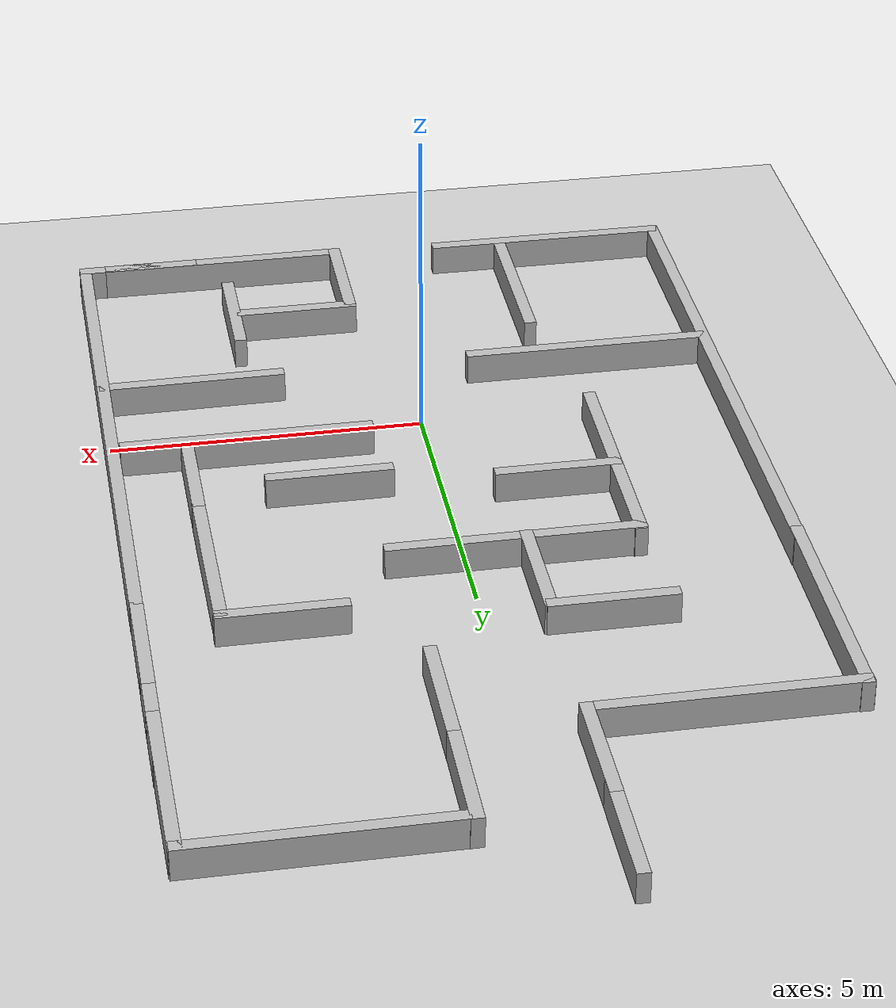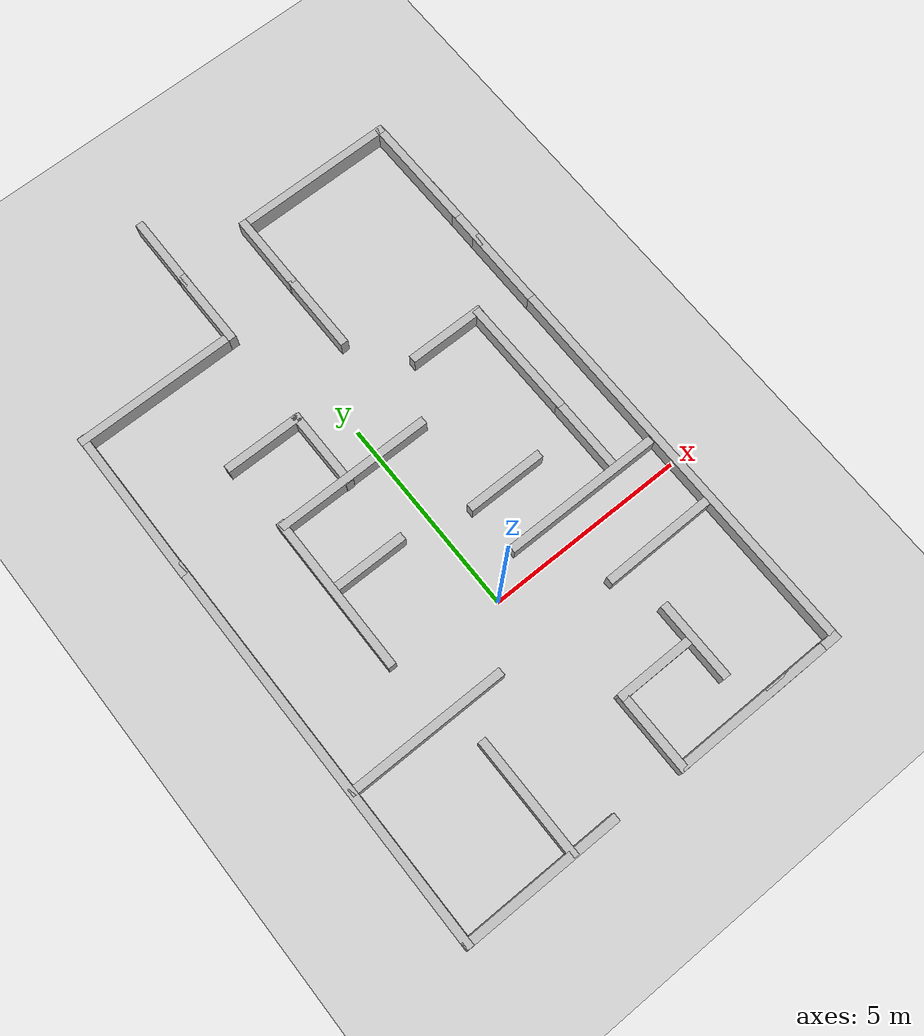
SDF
<sdf version="1.7">
 <world name="maze_world">
  <model name="ground_plane">
   <static>1</static>
   <link name="link">
    <collision name="collision">
     <geometry><plane><normal>0 0 1</normal><size>100 100</size></plane></geometry>
     <surface>
      <contact><collide_bitmask>65535</collide_bitmask></contact>
      <friction><ode><mu>100</mu><mu2>50</mu2></ode></friction>
     </surface>
    </collision>
    <visual name="visual">
     <cast_shadows>0</cast_shadows>
     <geometry><plane><normal>0 0 1</normal><size>100 100</size></plane></geometry>
     <material>
      <script><uri>file://media/materials/scripts/gazebo.material</uri><name>Gazebo/Grey</name></script>
     </material>
    </visual>
   </link>
  </model>
  <light name="sun" type="directional">
   <pose>0 0 10 0 -0 0</pose>
   <diffuse>0.8 0.8 0.8 1</diffuse>
   <specular>0.2 0.2 0.2 1</specular>
   <attenuation>
    <range>1000</range>
    <constant>0.9</constant>
    <linear>0.01</linear>
    <quadratic>0.001</quadratic>
   </attenuation>
   <direction>-0.5 0.1 -0.9</direction>
   <spot><inner_angle>0</inner_angle><outer_angle>0</outer_angle><falloff>0</falloff></spot>
  </light>
  <model name="south_wall_left">
   <pose>-0.005519 0 0 0 -0 0</pose>
   <static>1</static>
   <link name="link">
    <collision name="collision"><geometry><box><size>4 0.2 0.5</size></box></geometry></collision>
    <visual name="visual"><geometry><box><size>4 0.2 0.5</size></box></geometry></visual>
    <pose>-3 -5 0.25 0 -0 0</pose>
   </link>
  </model>
  <model name="south_wall_right">
   <pose>-0.33667 -0.08478 0 0 -0 0</pose>
   <static>1</static>
   <link name="link">
    <collision name="collision"><geometry><box><size>4 0.2 0.5</size></box></geometry></collision>
    <visual name="visual"><geometry><box><size>4 0.2 0.5</size></box></geometry></visual>
    <pose>3 -5 0.25 0 -0 0</pose>
   </link>
  </model>
  <model name="west_wall">
   <pose>0.07752 -0.091172 0 0 -0 0</pose>
   <static>1</static>
   <link name="link">
    <collision name="collision"><geometry><box><size>0.2 10 0.5</size></box></geometry></collision>
    <visual name="visual"><geometry><box><size>0.2 10 0.5</size></box></geometry></visual>
    <pose>-5 0 0.25 0 -0 0</pose>
   </link>
  </model>
  <model name="east_wall">
   <pose>0.00631 0.003506 0 0 -0 0</pose>
   <static>1</static>
   <link name="link">
    <collision name="collision"><geometry><box><size>0.2 10 0.5</size></box></geometry></collision>
    <visual name="visual"><geometry><box><size>0.2 10 0.5</size></box></geometry></visual>
    <pose>5 0 0.25 0 -0 0</pose>
   </link>
  </model>
  <model name="wall_1">
   <pose>-0.139468 0.47838 0 0 0 -1.56432</pose>
   <static>1</static>
   <link name="link">
    <collision name="collision"><geometry><box><size>3 0.2 0.5</size></box></geometry></collision>
    <visual name="visual"><geometry><box><size>3 0.2 0.5</size></box></geometry></visual>
    <pose>-3.5 4 0.25 0 -0 0</pose>
   </link>
  </model>
  <model name="wall_2">
   <pose>-0.178645 -6.07604 0 0 -0 0</pose>
   <static>1</static>
   <link name="link">
    <collision name="collision"><geometry><box><size>0.2 3 0.5</size></box></geometry></collision>
    <visual name="visual"><geometry><box><size>0.2 3 0.5</size></box></geometry></visual>
    <pose>-2 2.5 0.25 0 -0 0</pose>
   </link>
  </model>
  <model name="wall_3">
   <pose>-2.94728 -4.23694 0 0 -0 0</pose>
   <static>1</static>
   <link name="link">
    <collision name="collision"><geometry><box><size>4 0.2 0.5</size></box></geometry></collision>
    <visual name="visual"><geometry><box><size>4 0.2 0.5</size></box></geometry></visual>
    <pose>0 3 0.25 0 -0 0</pose>
   </link>
  </model>
  <gravity>0 0 -9.8</gravity>
  <magnetic_field>6e-06 2.3e-05 -4.2e-05</magnetic_field>
  <atmosphere type="adiabatic"/>
  <physics type="ode">
   <max_step_size>0.001</max_step_size>
   <real_time_factor>1</real_time_factor>
   <real_time_update_rate>1000</real_time_update_rate>
  </physics>
  <scene><ambient>0.4 0.4 0.4 1</ambient><background>0.7 0.7 0.7 1</background><shadows>1</shadows></scene>
  <audio><device>default</device></audio>
  <spherical_coordinates>
   <surface_model>EARTH_WGS84</surface_model>
   <latitude_deg>0</latitude_deg>
   <longitude_deg>0</longitude_deg>
   <elevation>0</elevation>
   <heading_deg>0</heading_deg>
  </spherical_coordinates>
  <model name="wall_2_clone">
   <static>1</static>
   <link name="link">
    <collision name="collision"><geometry><box><size>0.2 3 0.5</size></box></geometry></collision>
    <visual name="visual"><geometry><box><size>0.2 3 0.5</size></box></geometry></visual>
    <pose>-2 2.5 0.25 0 -0 0</pose>
   </link>
   <pose>1.09292 -3.20106 0 0 0 -1.55952</pose>
  </model>
  <model name="south_wall_right_clone">
   <static>1</static>
   <link name="link">
    <collision name="collision"><geometry><box><size>4 0.2 0.5</size></box></geometry></collision>
    <visual name="visual"><geometry><box><size>4 0.2 0.5</size></box></geometry></visual>
    <pose>3 -5 0.25 0 -0 0</pose>
   </link>
   <pose>0.07229 15.5433 0 0 -0 0</pose>
  </model>
  <model name="south_wall_right_clone_0">
   <static>1</static>
   <link name="link">
    <collision name="collision"><geometry><box><size>4 0.2 0.5</size></box></geometry></collision>
    <visual name="visual"><geometry><box><size>4 0.2 0.5</size></box></geometry></visual>
    <pose>3 -5 0.25 0 -0 0</pose>
   </link>
   <pose>-6.01242 13.4896 0 0 -0 0</pose>
  </model>
  <model name="wall_3_clone">
   <static>1</static>
   <link name="link">
    <collision name="collision"><geometry><box><size>4 0.2 0.5</size></box></geometry></collision>
    <visual name="visual"><geometry><box><size>4 0.2 0.5</size></box></geometry></visual>
    <pose>0 3 0.25 0 -0 0</pose>
   </link>
   <pose>2.88757 -2.34062 0 0 -0 0</pose>
  </model>
  <model name="wall_3_clone_0">
   <static>1</static>
   <link name="link">
    <collision name="collision"><geometry><box><size>4 0.2 0.5</size></box></geometry></collision>
    <visual name="visual"><geometry><box><size>4 0.2 0.5</size></box></geometry></visual>
    <pose>0 3 0.25 0 -0 0</pose>
   </link>
   <pose>-0.745213 1.15627 0 0 -0 0</pose>
  </model>
  <model name="wall_3_clone_1">
   <static>1</static>
   <link name="link">
    <collision name="collision"><geometry><box><size>4 0.2 0.5</size></box></geometry></collision>
    <visual name="visual"><geometry><box><size>4 0.2 0.5</size></box></geometry></visual>
    <pose>0 3 0.25 0 -0 0</pose>
   </link>
   <pose>-5.65712 2.30348 0 0 0 -1.57793</pose>
  </model>
  <model name="wall_4_clone">
   <static>1</static>
   <link name="link">
    <collision name="collision"><geometry><box><size>0.2 2 0.5</size></box></geometry></collision>
    <visual name="visual"><geometry><box><size>0.2 2 0.5</size></box></geometry></visual>
    <pose>1 2 0.25 0 -0 0</pose>
   </link>
   <pose>-0.006022 5.72296 0 0 -0 0</pose>
  </model>
  <model name="wall_4_clone_0">
   <static>1</static>
   <link name="link">
    <collision name="collision"><geometry><box><size>0.2 2 0.5</size></box></geometry></collision>
    <visual name="visual"><geometry><box><size>0.2 2 0.5</size></box></geometry></visual>
    <pose>1 2 0.25 0 -0 0</pose>
   </link>
   <pose>-1.91245 7.39118 0 0 -0 0</pose>
  </model>
  <model name="wall_4_clone_1">
   <static>1</static>
   <link name="link">
    <collision name="collision"><geometry><box><size>0.2 2 0.5</size></box></geometry></collision>
    <visual name="visual"><geometry><box><size>0.2 2 0.5</size></box></geometry></visual>
    <pose>1 2 0.25 0 -0 0</pose>
   </link>
   <pose>-0.239818 2.9404 0 0 0 -1.56923</pose>
  </model>
  <model name="wall_4_clone_2">
   <static>1</static>
   <link name="link">
    <collision name="collision"><geometry><box><size>0.2 2 0.5</size></box></geometry></collision>
    <visual name="visual"><geometry><box><size>0.2 2 0.5</size></box></geometry></visual>
    <pose>1 2 0.25 0 -0 0</pose>
   </link>
   <pose>-0.302112 -6.18783 0 0 -0 0</pose>
  </model>
  <model name="wall_4_clone_2_clone">
   <static>1</static>
   <link name="link">
    <collision name="collision"><geometry><box><size>0.2 2 0.5</size></box></geometry></collision>
    <visual name="visual"><geometry><box><size>0.2 2 0.5</size></box></geometry></visual>
    <pose>1 2 0.25 0 -0 0</pose>
   </link>
   <pose>2.10026 -4.08966 0 0 0 -1.56919</pose>
  </model>
  <model name="wall_4_clone_0_clone">
   <static>1</static>
   <link name="link">
    <collision name="collision"><geometry><box><size>0.2 2 0.5</size></box></geometry></collision>
    <visual name="visual"><geometry><box><size>0.2 2 0.5</size></box></geometry></visual>
    <pose>1 2 0.25 0 -0 0</pose>
   </link>
   <pose>1.64798 -5.29553 0 0 -0 0</pose>
  </model>
  <model name="wall_4_clone_3">
   <static>1</static>
   <link name="link">
    <collision name="collision"><geometry><box><size>0.2 2 0.5</size></box></geometry></collision>
    <visual name="visual"><geometry><box><size>0.2 2 0.5</size></box></geometry></visual>
    <pose>1 2 0.25 0 -0 0</pose>
   </link>
   <pose>2.84496 -0.426535 0 0 -0 0</pose>
  </model>
  <model name="wall_4_clone_3_clone">
   <static>1</static>
   <link name="link">
    <collision name="collision"><geometry><box><size>0.2 2 0.5</size></box></geometry></collision>
    <visual name="visual"><geometry><box><size>0.2 2 0.5</size></box></geometry></visual>
    <pose>1 2 0.25 0 -0 0</pose>
   </link>
   <pose>-3.7484 3.36765 0 0 0 -1.57279</pose>
  </model>
  <model name="wall_4_clone_1_clone_0">
   <static>1</static>
   <link name="link">
    <collision name="collision"><geometry><box><size>0.2 2 0.5</size></box></geometry></collision>
    <visual name="visual"><geometry><box><size>0.2 2 0.5</size></box></geometry></visual>
    <pose>1 2 0.25 0 -0 0</pose>
   </link>
   <pose>-0.398507 -2.21843 0 0 0 -1.56923</pose>
  </model>
  <model name="wall_4_clone_1_clone_1">
   <static>1</static>
   <link name="link">
    <collision name="collision"><geometry><box><size>0.2 2 0.5</size></box></geometry></collision>
    <visual name="visual"><geometry><box><size>0.2 2 0.5</size></box></geometry></visual>
    <pose>1 2 0.25 0 -0 0</pose>
   </link>
   <pose>0.107654 13.0902 0 0 -0 3.13565</pose>
  </model>
  <model name="wall_4_clone_3_clone_0">
   <static>1</static>
   <link name="link">
    <collision name="collision"><geometry><box><size>0.2 2 0.5</size></box></geometry></collision>
    <visual name="visual"><geometry><box><size>0.2 2 0.5</size></box></geometry></visual>
    <pose>1 2 0.25 0 -0 0</pose>
   </link>
   <pose>4.00148 3.95264 0 0 -0 0</pose>
  </model>
  <model name="wall_4_clone_1_clone_clone">
   <static>1</static>
   <link name="link">
    <collision name="collision"><geometry><box><size>0.2 2 0.5</size></box></geometry></collision>
    <visual name="visual"><geometry><box><size>0.2 2 0.5</size></box></geometry></visual>
    <pose>1 2 0.25 0 -0 0</pose>
   </link>
   <pose>0.935281 6.45336 0 0 0 -1.56923</pose>
  </model>
  <model name="wall_3_clone_1_clone">
   <static>1</static>
   <link name="link">
    <collision name="collision"><geometry><box><size>4 0.2 0.5</size></box></geometry></collision>
    <visual name="visual"><geometry><box><size>4 0.2 0.5</size></box></geometry></visual>
    <pose>0 3 0.25 0 -0 0</pose>
   </link>
   <pose>-7.91798 6.6253 0 0 0 -1.57793</pose>
  </model>
  <model name="wall_4_clone_1_clone_1_clone">
   <static>1</static>
   <link name="link">
    <collision name="collision"><geometry><box><size>0.2 2 0.5</size></box></geometry></collision>
    <visual name="visual"><geometry><box><size>0.2 2 0.5</size></box></geometry></visual>
    <pose>1 2 0.25 0 -0 0</pose>
   </link>
   <pose>2.00846 11.641 0 0 -0 3.13565</pose>
  </model>
  <model name="wall_4_clone_0_clone_clone">
   <static>1</static>
   <link name="link">
    <collision name="collision"><geometry><box><size>0.2 2 0.5</size></box></geometry></collision>
    <visual name="visual"><geometry><box><size>0.2 2 0.5</size></box></geometry></visual>
    <pose>1 2 0.25 0 -0 0</pose>
   </link>
   <pose>-1.91263 3.04088 0 0 -0 0</pose>
  </model>
  <model name="wall_4_clone_3_clone_clone">
   <static>1</static>
   <link name="link">
    <collision name="collision"><geometry><box><size>0.2 2 0.5</size></box></geometry></collision>
    <visual name="visual"><geometry><box><size>0.2 2 0.5</size></box></geometry></visual>
    <pose>1 2 0.25 0 -0 0</pose>
   </link>
   <pose>-3.83909 6.96764 0 0 0 -1.57279</pose>
  </model>
  <model name="wall_1_clone">
   <static>1</static>
   <link name="link">
    <collision name="collision"><geometry><box><size>3 0.2 0.5</size></box></geometry></collision>
    <visual name="visual"><geometry><box><size>3 0.2 0.5</size></box></geometry></visual>
    <pose>-3.5 4 0.25 0 -0 0</pose>
   </link>
   <pose>1.01763 5.5769 0 0 0 -1.56432</pose>
  </model>
  <model name="wall_4_clone_0_clone_clone_clone">
   <static>1</static>
   <link name="link">
    <collision name="collision"><geometry><box><size>0.2 2 0.5</size></box></geometry></collision>
    <visual name="visual"><geometry><box><size>0.2 2 0.5</size></box></geometry></visual>
    <pose>1 2 0.25 0 -0 0</pose>
   </link>
   <pose>4.00399 5.67235 0 0 -0 0</pose>
  </model>
 </world>
</sdf>
